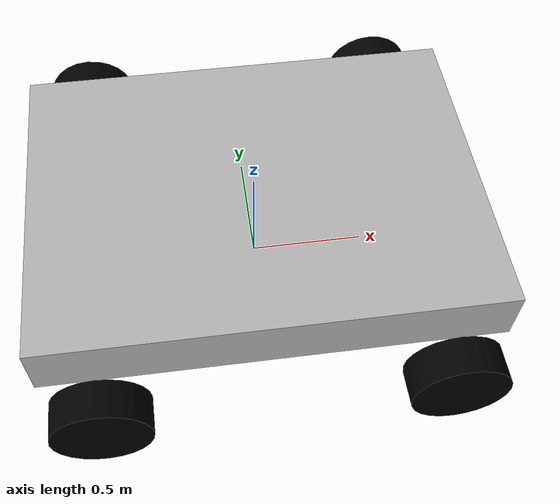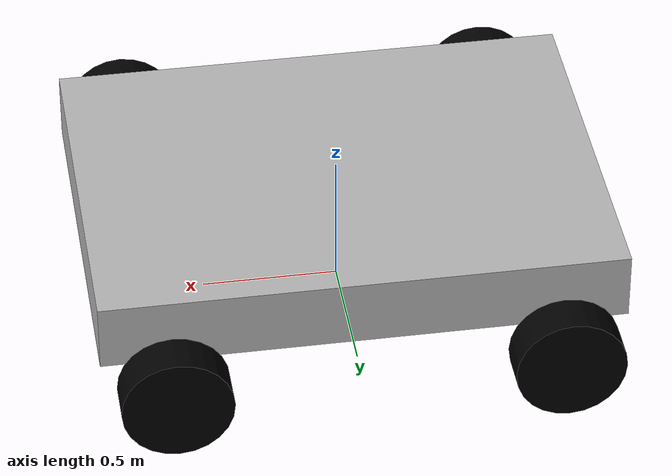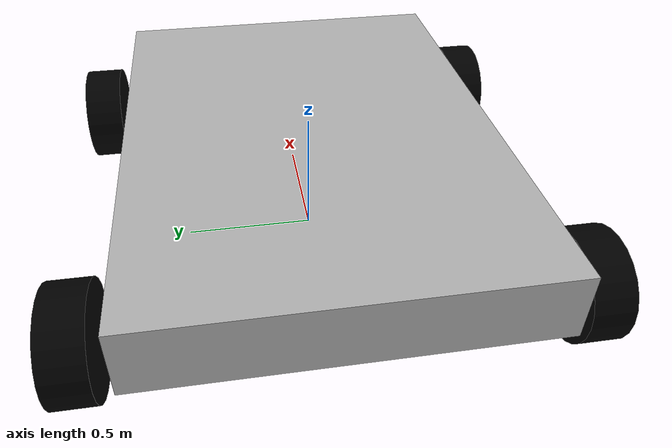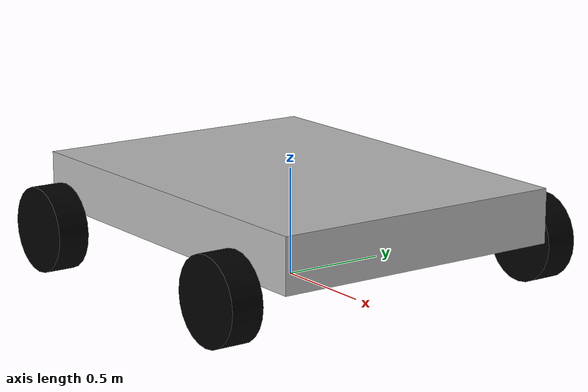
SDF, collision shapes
<?xml version="1.0" ?>
<sdf version="1.9">
  <model name="mars_curiosity_rover">
    <static>false</static>
    <self_collide>false</self_collide>

    <!-- Base Link - Main body of the rover -->
    <link name="base_link">
      <pose>0 0 0.42 0 0 0</pose>

      <inertial>
        <mass>100.0</mass>
        <inertia>
          <ixx>10.0</ixx>
          <ixy>0</ixy>
          <ixz>0</ixz>
          <iyy>15.0</iyy>
          <iyz>0</iyz>
          <izz>10.0</izz>
        </inertia>
      </inertial>

      <collision name="collision">
        <pose>0 0 -0.05 0 0 0</pose>
        <geometry>
          <box>
            <size>1.9 1.4 0.25</size>
          </box>
        </geometry>
        <surface>
          <friction>
            <ode>
              <mu>0.8</mu>
              <mu2>0.8</mu2>
            </ode>
          </friction>
        </surface>
      </collision>

      <visual name="visual">
        <pose>0 0 -0.35 0 0 1.5708</pose>
        <geometry>
          <mesh>
            <uri>model://MarsRover/mars_rover.dae</uri>
            <scale>1 1 1</scale>
          </mesh>
        </geometry>
      </visual>

      <!-- GPU Lidar - 360° scan, 8 Hz -->
      <sensor name="gpu_lidar" type="gpu_lidar">
        <pose>0 0 0.5 0 0 0</pose>
        <topic>lidar</topic>
        <update_rate>8</update_rate>
        <always_on>true</always_on>
        <visualize>true</visualize>
        <lidar>
          <scan>
            <horizontal>
              <samples>360</samples>
              <resolution>1</resolution>
              <min_angle>-3.14159</min_angle>
              <max_angle>3.14159</max_angle>
            </horizontal>
          </scan>
          <range>
            <min>0.05</min>
            <max>30.0</max>
            <resolution>0.01</resolution>
          </range>
          <noise>
            <type>gaussian</type>
            <mean>0.0</mean>
            <stddev>0.01</stddev>
          </noise>
        </lidar>
      </sensor>
    </link>

    <!-- Left Front Wheel -->
    <link name="left_front_wheel">
      <pose>0.7 0.85 0.2 -1.5707963 0 0</pose>
      <inertial>
        <mass>5.0</mass>
        <inertia>
          <ixx>0.1</ixx><ixy>0</ixy><ixz>0</ixz>
          <iyy>0.1</iyy><iyz>0</iyz>
          <izz>0.15</izz>
        </inertia>
      </inertial>
      <collision name="collision">
        <geometry>
          <cylinder><radius>0.2</radius><length>0.15</length></cylinder>
        </geometry>
        <surface>
          <friction>
            <ode>
              <mu>8.0</mu>
              <mu2>8.0</mu2>
              <slip1>0.0</slip1>
              <slip2>0.0</slip2>
            </ode>
          </friction>
          <contact>
            <ode>
              <kp>5000000.0</kp>
              <kd>20000.0</kd>
              <max_vel>0.2</max_vel>
              <min_depth>0.0001</min_depth>
            </ode>
          </contact>
        </surface>
      </collision>
      <visual name="visual">
        <geometry>
          <cylinder><radius>0.2</radius><length>0.15</length></cylinder>
        </geometry>
        <material><ambient>0 0 0 0</ambient><diffuse>0 0 0 0</diffuse></material>
      </visual>
    </link>
    <joint name="left_front_wheel_joint" type="revolute">
      <parent>base_link</parent>
      <child>left_front_wheel</child>
      <axis>
        <xyz>0 1 0</xyz>
        <limit>
          <effort>400</effort>
          <velocity>10</velocity>
        </limit>
        <dynamics>
          <damping>1.0</damping>
          <friction>0.2</friction>
        </dynamics>
      </axis>
    </joint>

    <!-- Right Front Wheel -->
    <link name="right_front_wheel">
      <pose>0.7 -0.85 0.2 -1.5707963 0 0</pose>
      <inertial>
        <mass>5.0</mass>
        <inertia>
          <ixx>0.1</ixx><ixy>0</ixy><ixz>0</ixz>
          <iyy>0.1</iyy><iyz>0</iyz>
          <izz>0.15</izz>
        </inertia>
      </inertial>
      <collision name="collision">
        <geometry>
          <cylinder><radius>0.2</radius><length>0.15</length></cylinder>
        </geometry>
        <surface>
          <friction>
            <ode>
              <mu>8.0</mu>
              <mu2>8.0</mu2>
              <slip1>0.0</slip1>
              <slip2>0.0</slip2>
            </ode>
          </friction>
          <contact>
            <ode>
              <kp>5000000.0</kp>
              <kd>20000.0</kd>
              <max_vel>0.2</max_vel>
              <min_depth>0.0001</min_depth>
            </ode>
          </contact>
        </surface>
      </collision>
      <visual name="visual">
        <geometry>
          <cylinder><radius>0.2</radius><length>0.15</length></cylinder>
        </geometry>
        <material><ambient>0 0 0 0</ambient><diffuse>0 0 0 0</diffuse></material>
      </visual>
    </link>
    <joint name="right_front_wheel_joint" type="revolute">
      <parent>base_link</parent>
      <child>right_front_wheel</child>
      <axis>
        <xyz>0 1 0</xyz>
        <limit>
          <effort>400</effort>
          <velocity>10</velocity>
        </limit>
        <dynamics>
          <damping>1.0</damping>
          <friction>0.2</friction>
        </dynamics>
      </axis>
    </joint>

    <!-- Left Rear Wheel -->
    <link name="left_rear_wheel">
      <pose>-0.7 0.85 0.2 -1.5707963 0 0</pose>
      <inertial>
        <mass>5.0</mass>
        <inertia>
          <ixx>0.1</ixx><ixy>0</ixy><ixz>0</ixz>
          <iyy>0.1</iyy><iyz>0</iyz>
          <izz>0.15</izz>
        </inertia>
      </inertial>
      <collision name="collision">
        <geometry>
          <cylinder><radius>0.2</radius><length>0.15</length></cylinder>
        </geometry>
        <surface>
          <friction>
            <ode>
              <mu>8.0</mu>
              <mu2>8.0</mu2>
              <slip1>0.0</slip1>
              <slip2>0.0</slip2>
            </ode>
          </friction>
          <contact>
            <ode>
              <kp>5000000.0</kp>
              <kd>20000.0</kd>
              <max_vel>0.2</max_vel>
              <min_depth>0.0001</min_depth>
            </ode>
          </contact>
        </surface>
      </collision>
      <visual name="visual">
        <geometry>
          <cylinder><radius>0.2</radius><length>0.15</length></cylinder>
        </geometry>
        <material><ambient>0 0 0 0</ambient><diffuse>0 0 0 0</diffuse></material>
      </visual>
    </link>
    <joint name="left_rear_wheel_joint" type="revolute">
      <parent>base_link</parent>
      <child>left_rear_wheel</child>
      <axis>
        <xyz>0 1 0</xyz>
        <limit>
          <effort>400</effort>
          <velocity>10</velocity>
        </limit>
        <dynamics>
          <damping>1.0</damping>
          <friction>0.2</friction>
        </dynamics>
      </axis>
    </joint>

    <!-- Right Rear Wheel -->
    <link name="right_rear_wheel">
      <pose>-0.7 -0.85 0.2 -1.5707963 0 0</pose>
      <inertial>
        <mass>5.0</mass>
        <inertia>
          <ixx>0.1</ixx><ixy>0</ixy><ixz>0</ixz>
          <iyy>0.1</iyy><iyz>0</iyz>
          <izz>0.15</izz>
        </inertia>
      </inertial>
      <collision name="collision">
        <geometry>
          <cylinder><radius>0.2</radius><length>0.15</length></cylinder>
        </geometry>
        <surface>
          <friction>
            <ode>
              <mu>8.0</mu>
              <mu2>8.0</mu2>
              <slip1>0.0</slip1>
              <slip2>0.0</slip2>
            </ode>
          </friction>
          <contact>
            <ode>
              <kp>5000000.0</kp>
              <kd>20000.0</kd>
              <max_vel>0.2</max_vel>
              <min_depth>0.0001</min_depth>
            </ode>
          </contact>
        </surface>
      </collision>
      <visual name="visual">
        <geometry>
          <cylinder><radius>0.2</radius><length>0.15</length></cylinder>
        </geometry>
        <material><ambient>0 0 0 0</ambient><diffuse>0 0 0 0</diffuse></material>
      </visual>
    </link>
    <joint name="right_rear_wheel_joint" type="revolute">
      <parent>base_link</parent>
      <child>right_rear_wheel</child>
      <axis>
        <xyz>0 1 0</xyz>
        <limit>
          <effort>400</effort>
          <velocity>10</velocity>
        </limit>
        <dynamics>
          <damping>1.0</damping>
          <friction>0.2</friction>
        </dynamics>
      </axis>
    </joint>

    <!-- Differential Drive Plugin -->
    <plugin filename="ignition-gazebo-diff-drive-system"
            name="ignition::gazebo::systems::DiffDrive">
      <left_joint>left_front_wheel_joint</left_joint>
      <left_joint>left_rear_wheel_joint</left_joint>
      <right_joint>right_front_wheel_joint</right_joint>
      <right_joint>right_rear_wheel_joint</right_joint>
      <wheel_separation>1.7</wheel_separation>
      <wheel_radius>0.2</wheel_radius>
      <odom_publish_frequency>20</odom_publish_frequency>
      <topic>/cmd_vel</topic>
      <odom_topic>/odom</odom_topic>
      <tf_topic>/tf</tf_topic>
      <frame_id>odom</frame_id>
      <child_frame_id>base_link</child_frame_id>
    </plugin>

  </model>
</sdf>
